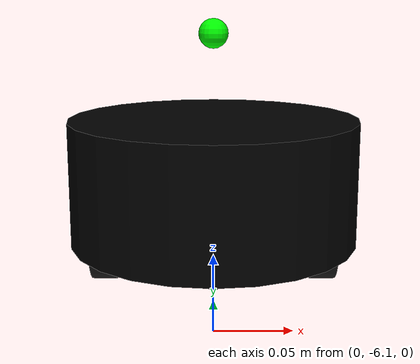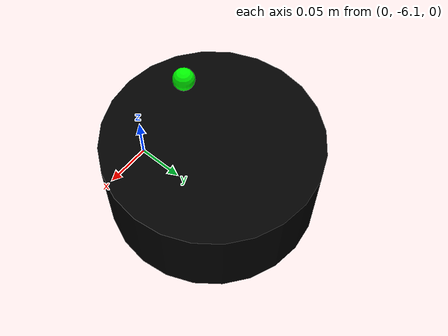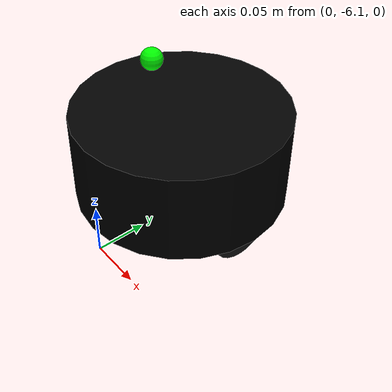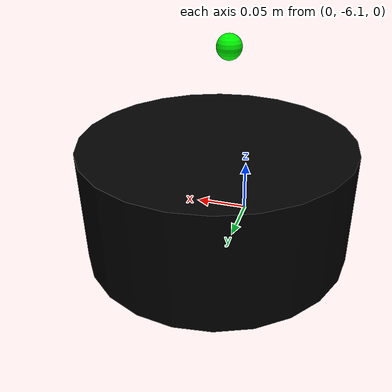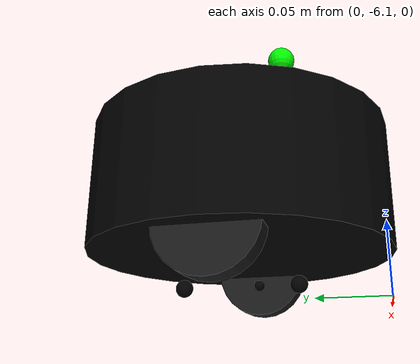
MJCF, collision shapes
<mujoco model="turtlebot3_burger">
  <compiler angle="radian" autolimits="true"/>

  <default>
    <default class="visual">
      <geom group="1" type="mesh" contype="0" conaffinity="0"/>
    </default>
    <default class="collision">
      <geom group="3" rgba="0 0 0 0" solref="0.01 1" solimp="0.9 0.95 0.001 0.5 2"/>
    </default>
    <default class="wheel">
      <geom group="0" type="cylinder" size="0.033 0.009" zaxis="0 1 0" friction="1.5 0.005 0.0001" condim="3" solref="0.01 1" solimp="0.9 0.95 0.001 0.5 2"/>
    </default>
  </default>

  <asset>
    <!-- 3D 视觉网格资产 (自包含 STL，相对路径由引用上层 meshdir 统一定义) -->
    <mesh name="burger_base" file="bases/burger_base.stl" scale="0.001 0.001 0.001"/>
    <mesh name="left_tire" file="wheels/left_tire.stl" scale="0.001 0.001 0.001"/>
    <mesh name="right_tire" file="wheels/right_tire.stl" scale="0.001 0.001 0.001"/>
    <mesh name="lds" file="sensors/lds.stl" scale="0.001 0.001 0.001"/>

    <!-- 材质配置 -->
    <material name="dark_grey" rgba="0.2 0.2 0.2 1"/>
    <material name="tire_black" rgba="0.1 0.1 0.1 1"/>
    <material name="sensor_black" rgba="0.05 0.05 0.05 1"/>
    <material name="accent_yellow" rgba="0.9 0.7 0.1 1"/>
  </asset>

  <worldbody>
    <!-- 机器人基座：初始预置于南侧车道 (0, -6.0, 0.03)，面朝正北 (绕 Z 轴旋转 90 度) -->
    <body name="base_link" pos="0 -6.0 0.010" euler="0 0 1.5707963">
      <freejoint name="root"/>
      <inertial mass="1.0" pos="-0.010 0 0.025" diaginertia="0.005 0.005 0.005"/>

      <!-- 底盘主体外观 (STL) -->
      <geom type="mesh" mesh="burger_base" pos="0 0 0" class="visual" material="dark_grey"/>
      <geom type="mesh" mesh="lds" pos="-0.032 0 0.172" class="visual" material="sensor_black"/>

      <!-- 底盘物理碰撞体 (加宽前部防护半径与防穿墙缓冲球，彻底杜绝相机穿墙) -->
      <geom type="cylinder" size="0.105 0.045" pos="0 0 0.065" class="collision" mass="0.80"/>
      <geom type="sphere" size="0.025" pos="0.080 0 0.065" class="collision" mass="0.02"/>

      <!-- 平衡稳定支点 (前后顺滑脚轮 + 高位防侧翻安全触点，杜绝多点地面超静定干涉) -->
      <geom type="sphere" size="0.006" pos="0.040 0 0.000" friction="0.01 0.005 0.0001" condim="1" class="collision" mass="0.02"/>
      <geom type="sphere" size="0.006" pos="-0.040 0 0.000" friction="0.01 0.005 0.0001" condim="1" class="collision" mass="0.02"/>
      <geom type="sphere" size="0.004" pos="0 0.065 0.012" friction="0.05 0.005 0.0001" condim="1" class="collision" mass="0.01"/>
      <geom type="sphere" size="0.004" pos="0 -0.065 0.012" friction="0.05 0.005 0.0001" condim="1" class="collision" mass="0.01"/>

      <!-- 车载前视第一人称感知相机 (FPV Driver & Perception Cam: 适度前移并抬高至 0.15m，仰俯微调至 -4.5° 黄金驾驶视野) -->
      <camera name="front_cam" pos="0.08 0 0.15" xyaxes="0 -1 0 0.08 0 0.997" fovy="60"/>

      <!-- 车载后向 45 度第三人称跟车俯瞰相机 (Third-person 45° Follow Cam) -->
      <camera name="third_person_cam" pos="-1.0 0 0.7" xyaxes="0 -1 0 0.58 0 0.81" fovy="60"/>

      <!-- 传感器安装站点 (Site) -->
      <site name="imu_site" pos="0 0 0.068" size="0.008" rgba="1 0 0 1"/>
      <site name="lidar_site" pos="-0.032 0 0.172" size="0.01" rgba="0 1 0 1"/>

      <!-- 左驱动轮 -->
      <body name="wheel_left_link" pos="0 0.080 0.023">
        <joint name="wheel_left_joint" type="hinge" axis="0 1 0" damping="0.12"/>
        <inertial mass="0.08" pos="0 0 0" diaginertia="0.0005 0.001 0.0005"/>
        <geom class="wheel" mass="0.05" material="tire_black"/>
        <geom type="mesh" mesh="left_tire" pos="0 0 0" class="visual" material="tire_black"/>
      </body>

      <!-- 右驱动轮 -->
      <body name="wheel_right_link" pos="0 -0.080 0.023">
        <joint name="wheel_right_joint" type="hinge" axis="0 1 0" damping="0.12"/>
        <inertial mass="0.08" pos="0 0 0" diaginertia="0.0005 0.001 0.0005"/>
        <geom class="wheel" mass="0.05" material="tire_black"/>
        <geom type="mesh" mesh="right_tire" pos="0 0 0" class="visual" material="tire_black"/>
      </body>
    </body>
  </worldbody>

  <actuator>
    <!-- 速度控制器：输入单位为 rad/s (提升最大扭矩储备至 2.5 N*m，确保爬坡充沛牵引力) -->
    <velocity name="wheel_left_motor" joint="wheel_left_joint" kv="1.5" forcerange="-2.5 2.5" ctrlrange="-25 25"/>
    <velocity name="wheel_right_motor" joint="wheel_right_joint" kv="1.5" forcerange="-2.5 2.5" ctrlrange="-25 25"/>
  </actuator>

  <sensor>
    <!-- 6 轴高频 IMU 动力学输出 -->
    <accelerometer name="imu_accel" site="imu_site"/>
    <gyro name="imu_gyro" site="imu_site"/>
  </sensor>
</mujoco>
